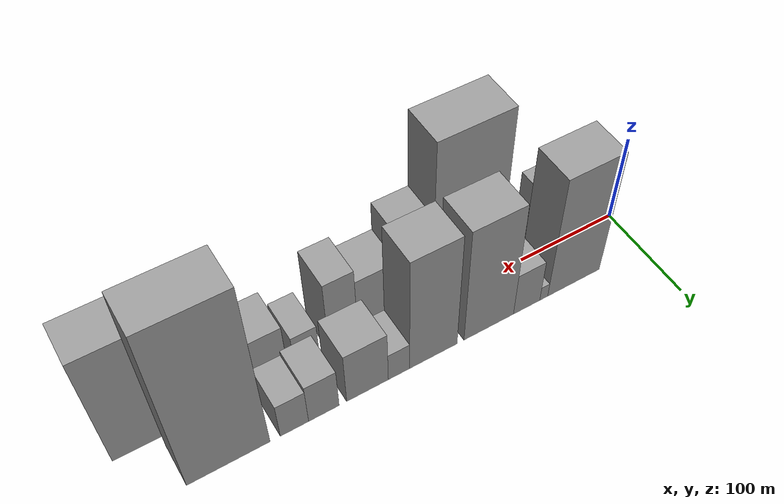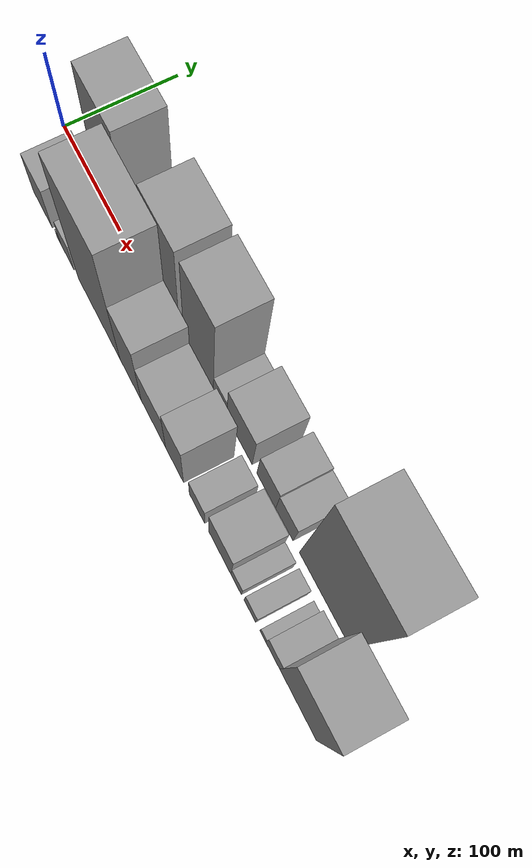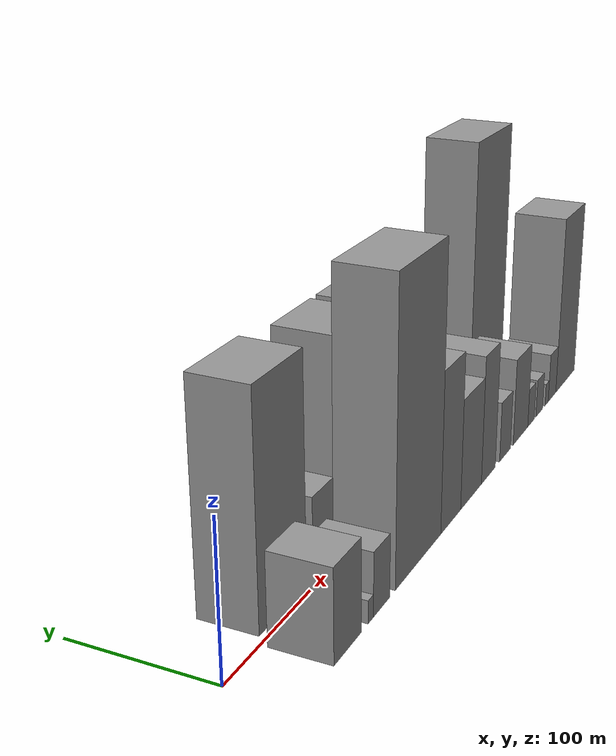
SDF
<sdf version="1.6">
 <world name="default">
  <scene>
   <sky><clouds><speed>12</speed></clouds></sky>
   <ambient>0.4 0.4 0.4 1</ambient>
   <background>0.7 0.7 0.7 1</background>
   <shadows>1</shadows>
  </scene>
  <gravity>0 0 -9.8066</gravity>
  <magnetic_field>6e-06 2.3e-05 -4.2e-05</magnetic_field>
  <physics default="0" name="default_physics" type="ode">
   <ode>
    <solver>
     <type>quick</type>
     <iters>10</iters>
     <sor>1.0</sor>
     <use_dynamic_moi_rescaling>0</use_dynamic_moi_rescaling>
    </solver>
    <constraints>
     <cfm>0</cfm>
     <erp>0.2</erp>
     <contact_max_correcting_vel>100</contact_max_correcting_vel>
     <contact_surface_layer>0.001</contact_surface_layer>
    </constraints>
   </ode>
   <max_step_size>0.004</max_step_size>
   <real_time_factor>1</real_time_factor>
   <real_time_update_rate>250</real_time_update_rate>
  </physics>
  <light name="sun" type="directional">
   <pose>0 0 10 0 0 0</pose>
   <diffuse>0.8 0.8 0.8 1</diffuse>
   <specular>0.2 0.2 0.2 1</specular>
   <attenuation>
    <range>1000</range>
    <constant>0.9</constant>
    <linear>0.01</linear>
    <quadratic>0.001</quadratic>
   </attenuation>
   <direction>-0.5 0.1 -0.9</direction>
  </light>
  <model name="building_1">
   <static>1</static>
   <pose>75.2871 24.5000 0 0.000000 0.000000 1.570796</pose>
   <link name="link">
    <pose>0 0 75.00 0 0 0</pose>
    <collision name="collision"><geometry><box><size>40.0000 56.5743 150.0000</size></box></geometry></collision>
    <visual name="visual">
     <cast_shadows>0</cast_shadows>
     <geometry><box><size>40.0000 56.5743 150.0000</size></box></geometry>
     <material>
      <script>
       <uri>model://grey_wall/materials/scripts</uri>
       <uri>model://grey_wall/materials/textures</uri>
       <name>vrc/grey_wall</name>
      </script>
     </material>
    </visual>
   </link>
  </model>
  <model name="building_2">
   <static>1</static>
   <pose>107.8261 24.5000 0 0.000000 0.000000 1.570796</pose>
   <link name="link">
    <pose>0 0 9.00 0 0 0</pose>
    <collision name="collision"><geometry><box><size>40.0000 8.5036 18.0000</size></box></geometry></collision>
    <visual name="visual">
     <cast_shadows>0</cast_shadows>
     <geometry><box><size>40.0000 8.5036 18.0000</size></box></geometry>
     <material>
      <script>
       <uri>model://grey_wall/materials/scripts</uri>
       <uri>model://grey_wall/materials/textures</uri>
       <name>vrc/grey_wall</name>
      </script>
     </material>
    </visual>
   </link>
  </model>
  <model name="building_3">
   <static>1</static>
   <pose>125.9951 24.5000 0 0.000000 0.000000 1.570796</pose>
   <link name="link">
    <pose>0 0 27.00 0 0 0</pose>
    <collision name="collision"><geometry><box><size>40.0000 27.8346 54.0000</size></box></geometry></collision>
    <visual name="visual">
     <cast_shadows>0</cast_shadows>
     <geometry><box><size>40.0000 27.8346 54.0000</size></box></geometry>
     <material>
      <script>
       <uri>model://grey_wall/materials/scripts</uri>
       <uri>model://grey_wall/materials/textures</uri>
       <name>vrc/grey_wall</name>
      </script>
     </material>
    </visual>
   </link>
  </model>
  <model name="building_4">
   <static>1</static>
   <pose>165.4359 24.5000 0 0.000000 0.000000 1.570796</pose>
   <link name="link">
    <pose>0 0 72.00 0 0 0</pose>
    <collision name="collision"><geometry><box><size>40.0000 51.0469 144.0000</size></box></geometry></collision>
    <visual name="visual">
     <cast_shadows>0</cast_shadows>
     <geometry><box><size>40.0000 51.0469 144.0000</size></box></geometry>
     <material>
      <script>
       <uri>model://grey_wall/materials/scripts</uri>
       <uri>model://grey_wall/materials/textures</uri>
       <name>vrc/grey_wall</name>
      </script>
     </material>
    </visual>
   </link>
  </model>
  <model name="building_5">
   <static>1</static>
   <pose>221.4254 24.5000 0 0.000000 0.000000 1.570796</pose>
   <link name="link">
    <pose>0 0 72.00 0 0 0</pose>
    <collision name="collision"><geometry><box><size>40.0000 46.9322 144.0000</size></box></geometry></collision>
    <visual name="visual">
     <cast_shadows>0</cast_shadows>
     <geometry><box><size>40.0000 46.9322 144.0000</size></box></geometry>
     <material>
      <script>
       <uri>model://grey_wall/materials/scripts</uri>
       <uri>model://grey_wall/materials/textures</uri>
       <name>vrc/grey_wall</name>
      </script>
     </material>
    </visual>
   </link>
  </model>
  <model name="building_6">
   <static>1</static>
   <pose>255.1739 24.5000 0 0.000000 0.000000 1.570796</pose>
   <link name="link">
    <pose>0 0 18.00 0 0 0</pose>
    <collision name="collision"><geometry><box><size>40.0000 20.5647 36.0000</size></box></geometry></collision>
    <visual name="visual">
     <cast_shadows>0</cast_shadows>
     <geometry><box><size>40.0000 20.5647 36.0000</size></box></geometry>
     <material>
      <script>
       <uri>model://grey_wall/materials/scripts</uri>
       <uri>model://grey_wall/materials/textures</uri>
       <name>vrc/grey_wall</name>
      </script>
     </material>
    </visual>
   </link>
  </model>
  <model name="building_7">
   <static>1</static>
   <pose>285.0986 24.5000 0 0.000000 0.000000 1.570796</pose>
   <link name="link">
    <pose>0 0 33.00 0 0 0</pose>
    <collision name="collision"><geometry><box><size>40.0000 39.2846 66.0000</size></box></geometry></collision>
    <visual name="visual">
     <cast_shadows>0</cast_shadows>
     <geometry><box><size>40.0000 39.2846 66.0000</size></box></geometry>
     <material>
      <script>
       <uri>model://grey_wall/materials/scripts</uri>
       <uri>model://grey_wall/materials/textures</uri>
       <name>vrc/grey_wall</name>
      </script>
     </material>
    </visual>
   </link>
  </model>
  <model name="building_8">
   <static>1</static>
   <pose>325.7034 24.5000 0 0.000000 0.000000 1.570796</pose>
   <link name="link">
    <pose>0 0 25.50 0 0 0</pose>
    <collision name="collision"><geometry><box><size>40.0000 27.9250 51.0000</size></box></geometry></collision>
    <visual name="visual">
     <cast_shadows>0</cast_shadows>
     <geometry><box><size>40.0000 27.9250 51.0000</size></box></geometry>
     <material>
      <script>
       <uri>model://grey_wall/materials/scripts</uri>
       <uri>model://grey_wall/materials/textures</uri>
       <name>vrc/grey_wall</name>
      </script>
     </material>
    </visual>
   </link>
  </model>
  <model name="building_9">
   <static>1</static>
   <pose>352.3964 24.5000 0 0.000000 0.000000 1.570796</pose>
   <link name="link">
    <pose>0 0 22.50 0 0 0</pose>
    <collision name="collision"><geometry><box><size>40.0000 25.4611 45.0000</size></box></geometry></collision>
    <visual name="visual">
     <cast_shadows>0</cast_shadows>
     <geometry><box><size>40.0000 25.4611 45.0000</size></box></geometry>
     <material>
      <script>
       <uri>model://grey_wall/materials/scripts</uri>
       <uri>model://grey_wall/materials/textures</uri>
       <name>vrc/grey_wall</name>
      </script>
     </material>
    </visual>
   </link>
  </model>
  <model name="building_10">
   <static>1</static>
   <pose>410.0282 24.5000 0 0.000000 0.000000 1.570796</pose>
   <link name="link">
    <pose>0 0 103.50 0 0 0</pose>
    <collision name="collision"><geometry><box><size>40.0000 71.8026 207.0000</size></box></geometry></collision>
    <visual name="visual">
     <cast_shadows>0</cast_shadows>
     <geometry><box><size>40.0000 71.8026 207.0000</size></box></geometry>
     <material>
      <script>
       <uri>model://grey_wall/materials/scripts</uri>
       <uri>model://grey_wall/materials/textures</uri>
       <name>vrc/grey_wall</name>
      </script>
     </material>
    </visual>
   </link>
  </model>
  <model name="building_11">
   <static>1</static>
   <pose>57.0972 -24.5000 0 0.000000 0.000000 1.570796</pose>
   <link name="link">
    <pose>0 0 30.00 0 0 0</pose>
    <collision name="collision"><geometry><box><size>40.0000 34.1944 60.0000</size></box></geometry></collision>
    <visual name="visual">
     <cast_shadows>0</cast_shadows>
     <geometry><box><size>40.0000 34.1944 60.0000</size></box></geometry>
     <material>
      <script>
       <uri>model://grey_wall/materials/scripts</uri>
       <uri>model://grey_wall/materials/textures</uri>
       <name>vrc/grey_wall</name>
      </script>
     </material>
    </visual>
   </link>
  </model>
  <model name="building_12">
   <static>1</static>
   <pose>86.7351 -24.5000 0 0.000000 0.000000 1.570796</pose>
   <link name="link">
    <pose>0 0 7.50 0 0 0</pose>
    <collision name="collision"><geometry><box><size>40.0000 7.0815 15.0000</size></box></geometry></collision>
    <visual name="visual">
     <cast_shadows>0</cast_shadows>
     <geometry><box><size>40.0000 7.0815 15.0000</size></box></geometry>
     <material>
      <script>
       <uri>model://grey_wall/materials/scripts</uri>
       <uri>model://grey_wall/materials/textures</uri>
       <name>vrc/grey_wall</name>
      </script>
     </material>
    </visual>
   </link>
  </model>
  <model name="building_13">
   <static>1</static>
   <pose>101.5798 -24.5000 0 0.000000 0.000000 1.570796</pose>
   <link name="link">
    <pose>0 0 21.00 0 0 0</pose>
    <collision name="collision"><geometry><box><size>40.0000 22.6079 42.0000</size></box></geometry></collision>
    <visual name="visual">
     <cast_shadows>0</cast_shadows>
     <geometry><box><size>40.0000 22.6079 42.0000</size></box></geometry>
     <material>
      <script>
       <uri>model://grey_wall/materials/scripts</uri>
       <uri>model://grey_wall/materials/textures</uri>
       <name>vrc/grey_wall</name>
      </script>
     </material>
    </visual>
   </link>
  </model>
  <model name="building_14">
   <static>1</static>
   <pose>156.4383 -24.5000 0 0.000000 0.000000 1.570796</pose>
   <link name="link">
    <pose>0 0 97.50 0 0 0</pose>
    <collision name="collision"><geometry><box><size>40.0000 71.1091 195.0000</size></box></geometry></collision>
    <visual name="visual">
     <cast_shadows>0</cast_shadows>
     <geometry><box><size>40.0000 71.1091 195.0000</size></box></geometry>
     <material>
      <script>
       <uri>model://grey_wall/materials/scripts</uri>
       <uri>model://grey_wall/materials/textures</uri>
       <name>vrc/grey_wall</name>
      </script>
     </material>
    </visual>
   </link>
  </model>
  <model name="building_15">
   <static>1</static>
   <pose>209.4007 -24.5000 0 0.000000 0.000000 1.570796</pose>
   <link name="link">
    <pose>0 0 55.50 0 0 0</pose>
    <collision name="collision"><geometry><box><size>40.0000 34.8155 111.0000</size></box></geometry></collision>
    <visual name="visual">
     <cast_shadows>0</cast_shadows>
     <geometry><box><size>40.0000 34.8155 111.0000</size></box></geometry>
     <material>
      <script>
       <uri>model://grey_wall/materials/scripts</uri>
       <uri>model://grey_wall/materials/textures</uri>
       <name>vrc/grey_wall</name>
      </script>
     </material>
    </visual>
   </link>
  </model>
  <model name="building_16">
   <static>1</static>
   <pose>246.3807 -24.5000 0 0.000000 0.000000 1.570796</pose>
   <link name="link">
    <pose>0 0 39.00 0 0 0</pose>
    <collision name="collision"><geometry><box><size>40.0000 39.1446 78.0000</size></box></geometry></collision>
    <visual name="visual">
     <cast_shadows>0</cast_shadows>
     <geometry><box><size>40.0000 39.1446 78.0000</size></box></geometry>
     <material>
      <script>
       <uri>model://grey_wall/materials/scripts</uri>
       <uri>model://grey_wall/materials/textures</uri>
       <name>vrc/grey_wall</name>
      </script>
     </material>
    </visual>
   </link>
  </model>
  <model name="building_17">
   <static>1</static>
   <pose>279.9418 -24.5000 0 0.000000 0.000000 1.570796</pose>
   <link name="link">
    <pose>0 0 46.50 0 0 0</pose>
    <collision name="collision"><geometry><box><size>40.0000 27.9776 93.0000</size></box></geometry></collision>
    <visual name="visual">
     <cast_shadows>0</cast_shadows>
     <geometry><box><size>40.0000 27.9776 93.0000</size></box></geometry>
     <material>
      <script>
       <uri>model://grey_wall/materials/scripts</uri>
       <uri>model://grey_wall/materials/textures</uri>
       <name>vrc/grey_wall</name>
      </script>
     </material>
    </visual>
   </link>
  </model>
  <model name="building_18">
   <static>1</static>
   <pose>314.5903 -24.5000 0 0.000000 0.000000 1.570796</pose>
   <link name="link">
    <pose>0 0 22.50 0 0 0</pose>
    <collision name="collision"><geometry><box><size>40.0000 23.3193 45.0000</size></box></geometry></collision>
    <visual name="visual">
     <cast_shadows>0</cast_shadows>
     <geometry><box><size>40.0000 23.3193 45.0000</size></box></geometry>
     <material>
      <script>
       <uri>model://grey_wall/materials/scripts</uri>
       <uri>model://grey_wall/materials/textures</uri>
       <name>vrc/grey_wall</name>
      </script>
     </material>
    </visual>
   </link>
  </model>
  <model name="building_19">
   <static>1</static>
   <pose>348.9699 -24.5000 0 0.000000 0.000000 1.570796</pose>
   <link name="link">
    <pose>0 0 33.00 0 0 0</pose>
    <collision name="collision"><geometry><box><size>40.0000 33.4400 66.0000</size></box></geometry></collision>
    <visual name="visual">
     <cast_shadows>0</cast_shadows>
     <geometry><box><size>40.0000 33.4400 66.0000</size></box></geometry>
     <material>
      <script>
       <uri>model://grey_wall/materials/scripts</uri>
       <uri>model://grey_wall/materials/textures</uri>
       <name>vrc/grey_wall</name>
      </script>
     </material>
    </visual>
   </link>
  </model>
  <model name="building_20">
   <static>1</static>
   <pose>373.3785 -24.5000 0 0.000000 0.000000 1.570796</pose>
   <link name="link">
    <pose>0 0 15.00 0 0 0</pose>
    <collision name="collision"><geometry><box><size>40.0000 15.3773 30.0000</size></box></geometry></collision>
    <visual name="visual">
     <cast_shadows>0</cast_shadows>
     <geometry><box><size>40.0000 15.3773 30.0000</size></box></geometry>
     <material>
      <script>
       <uri>model://grey_wall/materials/scripts</uri>
       <uri>model://grey_wall/materials/textures</uri>
       <name>vrc/grey_wall</name>
      </script>
     </material>
    </visual>
   </link>
  </model>
  <model name="building_21">
   <static>1</static>
   <pose>393.4157 -24.5000 0 0.000000 0.000000 1.570796</pose>
   <link name="link">
    <pose>0 0 15.00 0 0 0</pose>
    <collision name="collision"><geometry><box><size>40.0000 16.6970 30.0000</size></box></geometry></collision>
    <visual name="visual">
     <cast_shadows>0</cast_shadows>
     <geometry><box><size>40.0000 16.6970 30.0000</size></box></geometry>
     <material>
      <script>
       <uri>model://grey_wall/materials/scripts</uri>
       <uri>model://grey_wall/materials/textures</uri>
       <name>vrc/grey_wall</name>
      </script>
     </material>
    </visual>
   </link>
  </model>
  <model name="building_22">
   <static>1</static>
   <pose>411.9320 -24.5000 0 0.000000 0.000000 1.570796</pose>
   <link name="link">
    <pose>0 0 9.00 0 0 0</pose>
    <collision name="collision"><geometry><box><size>40.0000 8.3356 18.0000</size></box></geometry></collision>
    <visual name="visual">
     <cast_shadows>0</cast_shadows>
     <geometry><box><size>40.0000 8.3356 18.0000</size></box></geometry>
     <material>
      <script>
       <uri>model://grey_wall/materials/scripts</uri>
       <uri>model://grey_wall/materials/textures</uri>
       <name>vrc/grey_wall</name>
      </script>
     </material>
    </visual>
   </link>
  </model>
  <model name="building_23">
   <static>1</static>
   <pose>426.0377 -24.5000 0 0.000000 0.000000 1.570796</pose>
   <link name="link">
    <pose>0 0 19.50 0 0 0</pose>
    <collision name="collision"><geometry><box><size>40.0000 19.8758 39.0000</size></box></geometry></collision>
    <visual name="visual">
     <cast_shadows>0</cast_shadows>
     <geometry><box><size>40.0000 19.8758 39.0000</size></box></geometry>
     <material>
      <script>
       <uri>model://grey_wall/materials/scripts</uri>
       <uri>model://grey_wall/materials/textures</uri>
       <name>vrc/grey_wall</name>
      </script>
     </material>
    </visual>
   </link>
  </model>
  <model name="building_24">
   <static>1</static>
   <pose>461.4055 -24.5000 0 0.000000 0.000000 1.570796</pose>
   <link name="link">
    <pose>0 0 70.50 0 0 0</pose>
    <collision name="collision"><geometry><box><size>40.0000 50.8599 141.0000</size></box></geometry></collision>
    <visual name="visual">
     <cast_shadows>0</cast_shadows>
     <geometry><box><size>40.0000 50.8599 141.0000</size></box></geometry>
     <material>
      <script>
       <uri>model://grey_wall/materials/scripts</uri>
       <uri>model://grey_wall/materials/textures</uri>
       <name>vrc/grey_wall</name>
      </script>
     </material>
    </visual>
   </link>
  </model>
 </world>
</sdf>
